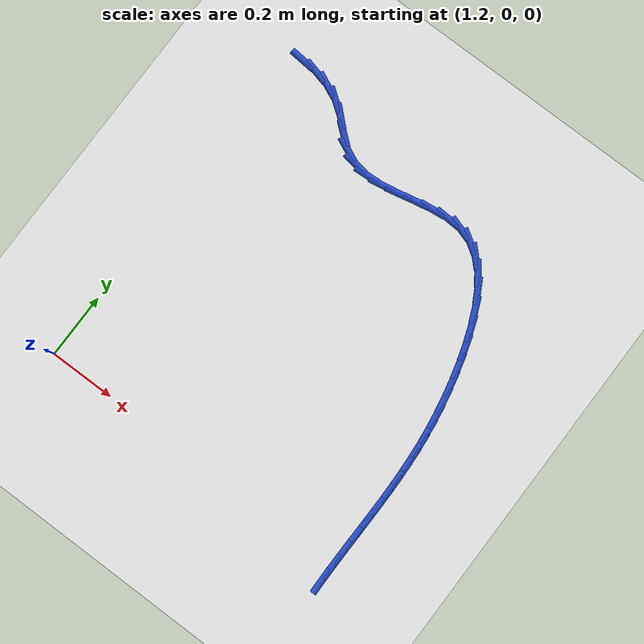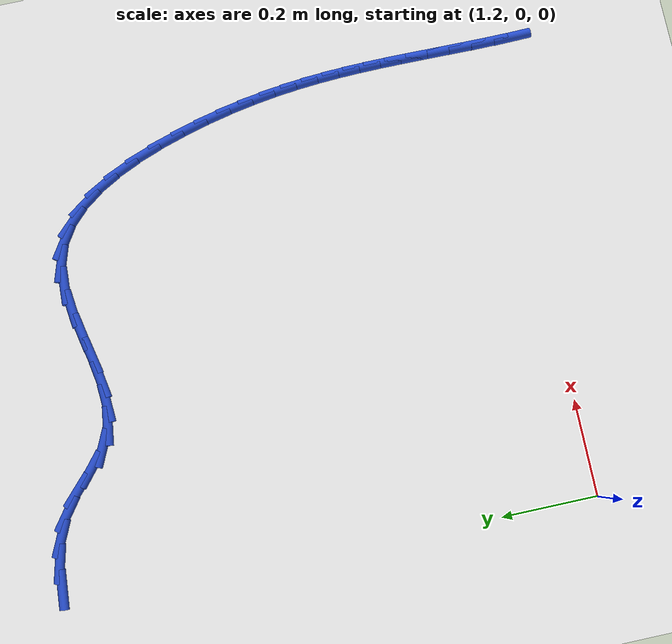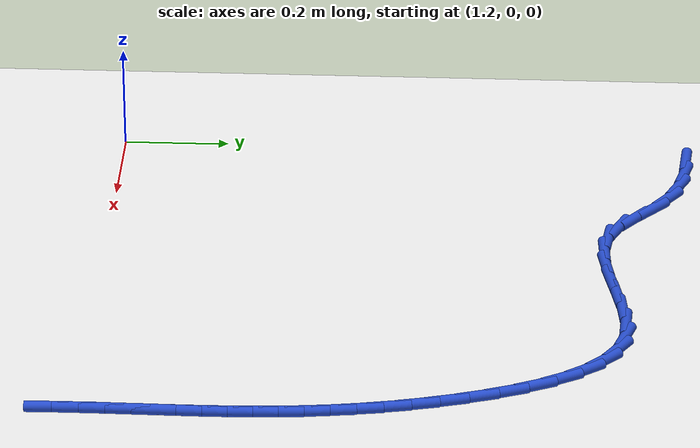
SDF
<sdf version="1.6">
 <world name="default">
  <model name="ground_plane">
   <static>1</static>
   <link name="link">
    <collision name="collision">
     <geometry><plane><normal>0 0 1</normal><size>100 100</size></plane></geometry>
     <surface><friction><ode><mu>100</mu><mu2>50</mu2></ode></friction></surface>
    </collision>
    <visual name="visual">
     <cast_shadows>0</cast_shadows>
     <geometry><plane><normal>0 0 1</normal><size>100 100</size></plane></geometry>
     <material>
      <script><uri>file://media/materials/scripts/gazebo.material</uri><name>Gazebo/WhiteGlow</name></script>
     </material>
    </visual>
   </link>
  </model>
  <model name="line">
   <link name="link_36">
    <pose>1.2482865682533189 1.091222248486101 0.01 0 1.57 -0.08340748425018744</pose>
    <collision name="collision">
     <geometry><cylinder><radius>0.01</radius><length>0.08</length></cylinder></geometry>
    </collision>
    <visual name="visual">
     <material>
      <script><name>Gazebo/Blue</name><uri>file://media/materials/scripts/gazebo.material</uri></script>
     </material>
     <geometry><cylinder><radius>0.01</radius><length>0.08</length></cylinder></geometry>
    </visual>
   </link>
   <link name="link_37">
    <pose>1.2992010212233052 1.0869657268691848 0.01 0 1.57 -0.24237849514918086</pose>
    <collision name="collision">
     <geometry><cylinder><radius>0.01</radius><length>0.08</length></cylinder></geometry>
    </collision>
    <visual name="visual">
     <material>
      <script><name>Gazebo/Blue</name><uri>file://media/materials/scripts/gazebo.material</uri></script>
     </material>
     <geometry><cylinder><radius>0.01</radius><length>0.08</length></cylinder></geometry>
    </visual>
   </link>
   <link name="link_38">
    <pose>1.347719058260009 1.0749701705734702 0.01 0 1.57 -0.42653907451353473</pose>
    <collision name="collision">
     <geometry><cylinder><radius>0.01</radius><length>0.08</length></cylinder></geometry>
    </collision>
    <visual name="visual">
     <material>
      <script><name>Gazebo/Blue</name><uri>file://media/materials/scripts/gazebo.material</uri></script>
     </material>
     <geometry><cylinder><radius>0.01</radius><length>0.08</length></cylinder></geometry>
    </visual>
   </link>
   <link name="link_39">
    <pose>1.3926507030747077 1.0545514890839418 0.01 0 1.57 -0.6294814415179085</pose>
    <collision name="collision">
     <geometry><cylinder><radius>0.01</radius><length>0.08</length></cylinder></geometry>
    </collision>
    <visual name="visual">
     <material>
      <script><name>Gazebo/Blue</name><uri>file://media/materials/scripts/gazebo.material</uri></script>
     </material>
     <geometry><cylinder><radius>0.01</radius><length>0.08</length></cylinder></geometry>
    </visual>
   </link>
   <link name="link_40">
    <pose>1.4329145899051385 1.0252264627812258 0.01 0 1.57 -0.7468671732004298</pose>
    <collision name="collision">
     <geometry><cylinder><radius>0.01</radius><length>0.08</length></cylinder></geometry>
    </collision>
    <visual name="visual">
     <material>
      <script><name>Gazebo/Blue</name><uri>file://media/materials/scripts/gazebo.material</uri></script>
     </material>
     <geometry><cylinder><radius>0.01</radius><length>0.08</length></cylinder></geometry>
    </visual>
   </link>
   <link name="link_41">
    <pose>1.4698659660813262 0.9910182920969072 0.01 0 1.57 -0.6861508142728906</pose>
    <collision name="collision">
     <geometry><cylinder><radius>0.01</radius><length>0.08</length></cylinder></geometry>
    </collision>
    <visual name="visual">
     <material>
      <script><name>Gazebo/Blue</name><uri>file://media/materials/scripts/gazebo.material</uri></script>
     </material>
     <geometry><cylinder><radius>0.01</radius><length>0.08</length></cylinder></geometry>
    </visual>
   </link>
   <link name="link_42">
    <pose>1.5072630456528717 0.9603943698709438 0.01 0 1.57 -0.4293373047036167</pose>
    <collision name="collision">
     <geometry><cylinder><radius>0.01</radius><length>0.08</length></cylinder></geometry>
    </collision>
    <visual name="visual">
     <material>
      <script><name>Gazebo/Blue</name><uri>file://media/materials/scripts/gazebo.material</uri></script>
     </material>
     <geometry><cylinder><radius>0.01</radius><length>0.08</length></cylinder></geometry>
    </visual>
   </link>
   <link name="link_43">
    <pose>1.548712986838111 0.9414177915825171 0.01 0 1.57 -0.13399790288748445</pose>
    <collision name="collision">
     <geometry><cylinder><radius>0.01</radius><length>0.08</length></cylinder></geometry>
    </collision>
    <visual name="visual">
     <material>
      <script><name>Gazebo/Blue</name><uri>file://media/materials/scripts/gazebo.material</uri></script>
     </material>
     <geometry><cylinder><radius>0.01</radius><length>0.08</length></cylinder></geometry>
    </visual>
   </link>
   <link name="link_44">
    <pose>1.5948553656058173 0.9351975358138063 0.01 0 1.57 0.06304998692201866</pose>
    <collision name="collision">
     <geometry><cylinder><radius>0.01</radius><length>0.08</length></cylinder></geometry>
    </collision>
    <visual name="visual">
     <material>
      <script><name>Gazebo/Blue</name><uri>file://media/materials/scripts/gazebo.material</uri></script>
     </material>
     <geometry><cylinder><radius>0.01</radius><length>0.08</length></cylinder></geometry>
    </visual>
   </link>
   <link name="link_45">
    <pose>1.644402196647742 0.938325608972584 0.01 0 1.57 0.17242606579460498</pose>
    <collision name="collision">
     <geometry><cylinder><radius>0.01</radius><length>0.08</length></cylinder></geometry>
    </collision>
    <visual name="visual">
     <material>
      <script><name>Gazebo/Blue</name><uri>file://media/materials/scripts/gazebo.material</uri></script>
     </material>
     <geometry><cylinder><radius>0.01</radius><length>0.08</length></cylinder></geometry>
    </visual>
   </link>
   <link name="link_46">
    <pose>1.696032779856192 0.9473173548771904 0.01 0 1.57 0.2137114982523742</pose>
    <collision name="collision">
     <geometry><cylinder><radius>0.01</radius><length>0.08</length></cylinder></geometry>
    </collision>
    <visual name="visual">
     <material>
      <script><name>Gazebo/Blue</name><uri>file://media/materials/scripts/gazebo.material</uri></script>
     </material>
     <geometry><cylinder><radius>0.01</radius><length>0.08</length></cylinder></geometry>
    </visual>
   </link>
   <link name="link_47">
    <pose>1.7484264151234732 0.9586881173459646 0.01 0 1.57 0.19550139874099487</pose>
    <collision name="collision">
     <geometry><cylinder><radius>0.01</radius><length>0.08</length></cylinder></geometry>
    </collision>
    <visual name="visual">
     <material>
      <script><name>Gazebo/Blue</name><uri>file://media/materials/scripts/gazebo.material</uri></script>
     </material>
     <geometry><cylinder><radius>0.01</radius><length>0.08</length></cylinder></geometry>
    </visual>
   </link>
   <link name="link_48">
    <pose>1.8002624023418914 0.9689532401972458 0.01 0 1.57 0.11310795236327678</pose>
    <collision name="collision">
     <geometry><cylinder><radius>0.01</radius><length>0.08</length></cylinder></geometry>
    </collision>
    <visual name="visual">
     <material>
      <script><name>Gazebo/Blue</name><uri>file://media/materials/scripts/gazebo.material</uri></script>
     </material>
     <geometry><cylinder><radius>0.01</radius><length>0.08</length></cylinder></geometry>
    </visual>
   </link>
   <link name="link_49">
    <pose>1.850220041403754 0.9746280672493743 0.01 0 1.57 -0.0512851280952237</pose>
    <collision name="collision">
     <geometry><cylinder><radius>0.01</radius><length>0.08</length></cylinder></geometry>
    </collision>
    <visual name="visual">
     <material>
      <script><name>Gazebo/Blue</name><uri>file://media/materials/scripts/gazebo.material</uri></script>
     </material>
     <geometry><cylinder><radius>0.01</radius><length>0.08</length></cylinder></geometry>
    </visual>
   </link>
   <link name="link_50">
    <pose>1.8969786322013666 0.9722279423206889 0.01 0 1.57 -0.30920133902874697</pose>
    <collision name="collision">
     <geometry><cylinder><radius>0.01</radius><length>0.08</length></cylinder></geometry>
    </collision>
    <visual name="visual">
     <material>
      <script><name>Gazebo/Blue</name><uri>file://media/materials/scripts/gazebo.material</uri></script>
     </material>
     <geometry><cylinder><radius>0.01</radius><length>0.08</length></cylinder></geometry>
    </visual>
   </link>
   <link name="link_51">
    <pose>1.9393470703888034 0.9586934668144883 0.01 0 1.57 -0.5742188186803635</pose>
    <collision name="collision">
     <geometry><cylinder><radius>0.01</radius><length>0.08</length></cylinder></geometry>
    </collision>
    <visual name="visual">
     <material>
      <script><name>Gazebo/Blue</name><uri>file://media/materials/scripts/gazebo.material</uri></script>
     </material>
     <geometry><cylinder><radius>0.01</radius><length>0.08</length></cylinder></geometry>
    </visual>
   </link>
   <link name="link_52">
    <pose>1.9771344782977258 0.9342474017935839 0.01 0 1.57 -0.787284432630587</pose>
    <collision name="collision">
     <geometry><cylinder><radius>0.01</radius><length>0.08</length></cylinder></geometry>
    </collision>
    <visual name="visual">
     <material>
      <script><name>Gazebo/Blue</name><uri>file://media/materials/scripts/gazebo.material</uri></script>
     </material>
     <geometry><cylinder><radius>0.01</radius><length>0.08</length></cylinder></geometry>
    </visual>
   </link>
   <link name="link_53">
    <pose>2.0106154426083465 0.9006398904052688 0.01 0 1.57 -0.9479905221870754</pose>
    <collision name="collision">
     <geometry><cylinder><radius>0.01</radius><length>0.08</length></cylinder></geometry>
    </collision>
    <visual name="visual">
     <material>
      <script><name>Gazebo/Blue</name><uri>file://media/materials/scripts/gazebo.material</uri></script>
     </material>
     <geometry><cylinder><radius>0.01</radius><length>0.08</length></cylinder></geometry>
    </visual>
   </link>
   <link name="link_54">
    <pose>2.0400671394477903 0.8596295728489362 0.01 0 1.57 -1.067301034450368</pose>
    <collision name="collision">
     <geometry><cylinder><radius>0.01</radius><length>0.08</length></cylinder></geometry>
    </collision>
    <visual name="visual">
     <material>
      <script><name>Gazebo/Blue</name><uri>file://media/materials/scripts/gazebo.material</uri></script>
     </material>
     <geometry><cylinder><radius>0.01</radius><length>0.08</length></cylinder></geometry>
    </visual>
   </link>
   <link name="link_55">
    <pose>2.0657667449431827 0.8129750893239805 0.01 0 1.57 -1.1565035445850742</pose>
    <collision name="collision">
     <geometry><cylinder><radius>0.01</radius><length>0.08</length></cylinder></geometry>
    </collision>
    <visual name="visual">
     <material>
      <script><name>Gazebo/Blue</name><uri>file://media/materials/scripts/gazebo.material</uri></script>
     </material>
     <geometry><cylinder><radius>0.01</radius><length>0.08</length></cylinder></geometry>
    </visual>
   </link>
   <link name="link_56">
    <pose>2.0879914352216478 0.762435080029795 0.01 0 1.57 -1.2241172107202294</pose>
    <collision name="collision">
     <geometry><cylinder><radius>0.01</radius><length>0.08</length></cylinder></geometry>
    </collision>
    <visual name="visual">
     <material>
      <script><name>Gazebo/Blue</name><uri>file://media/materials/scripts/gazebo.material</uri></script>
     </material>
     <geometry><cylinder><radius>0.01</radius><length>0.08</length></cylinder></geometry>
    </visual>
   </link>
   <link name="link_57">
    <pose>2.10701838641031 0.7097681851657731 0.01 0 1.57 -1.275955129877135</pose>
    <collision name="collision">
     <geometry><cylinder><radius>0.01</radius><length>0.08</length></cylinder></geometry>
    </collision>
    <visual name="visual">
     <material>
      <script><name>Gazebo/Blue</name><uri>file://media/materials/scripts/gazebo.material</uri></script>
     </material>
     <geometry><cylinder><radius>0.01</radius><length>0.08</length></cylinder></geometry>
    </visual>
   </link>
   <link name="link_58">
    <pose>2.1231247746362953 0.6567330449313074 0.01 0 1.57 -1.3165396528618019</pose>
    <collision name="collision">
     <geometry><cylinder><radius>0.01</radius><length>0.08</length></cylinder></geometry>
    </collision>
    <visual name="visual">
     <material>
      <script><name>Gazebo/Blue</name><uri>file://media/materials/scripts/gazebo.material</uri></script>
     </material>
     <geometry><cylinder><radius>0.01</radius><length>0.08</length></cylinder></geometry>
    </visual>
   </link>
   <link name="link_59">
    <pose>2.1365840468953263 0.6049429269997217 0.01 0 1.57 -1.353860161787056</pose>
    <collision name="collision">
     <geometry><cylinder><radius>0.01</radius><length>0.08</length></cylinder></geometry>
    </collision>
    <visual name="visual">
     <material>
      <script><name>Gazebo/Blue</name><uri>file://media/materials/scripts/gazebo.material</uri></script>
     </material>
     <geometry><cylinder><radius>0.01</radius><length>0.08</length></cylinder></geometry>
    </visual>
   </link>
   <link name="link_60">
    <pose>2.14763829028107 0.5547885976920731 0.01 0 1.57 -1.3906673325039391</pose>
    <collision name="collision">
     <geometry><cylinder><radius>0.01</radius><length>0.08</length></cylinder></geometry>
    </collision>
    <visual name="visual">
     <material>
      <script><name>Gazebo/Blue</name><uri>file://media/materials/scripts/gazebo.material</uri></script>
     </material>
     <geometry><cylinder><radius>0.01</radius><length>0.08</length></cylinder></geometry>
    </visual>
   </link>
   <link name="link_61">
    <pose>2.1565138984983276 0.50604904880699 0.01 0 1.57 -1.4262139118599615</pose>
    <collision name="collision">
     <geometry><cylinder><radius>0.01</radius><length>0.08</length></cylinder></geometry>
    </collision>
    <visual name="visual">
     <material>
      <script><name>Gazebo/Blue</name><uri>file://media/materials/scripts/gazebo.material</uri></script>
     </material>
     <geometry><cylinder><radius>0.01</radius><length>0.08</length></cylinder></geometry>
    </visual>
   </link>
   <link name="link_62">
    <pose>2.163437148498952 0.4584987207691362 0.01 0 1.57 -1.4596965568626592</pose>
    <collision name="collision">
     <geometry><cylinder><radius>0.01</radius><length>0.08</length></cylinder></geometry>
    </collision>
    <visual name="visual">
     <material>
      <script><name>Gazebo/Blue</name><uri>file://media/materials/scripts/gazebo.material</uri></script>
     </material>
     <geometry><cylinder><radius>0.01</radius><length>0.08</length></cylinder></geometry>
    </visual>
   </link>
   <link name="link_63">
    <pose>2.168634317234795 0.411912054003177 0.01 0 1.57 -1.4903274934090043</pose>
    <collision name="collision">
     <geometry><cylinder><radius>0.01</radius><length>0.08</length></cylinder></geometry>
    </collision>
    <visual name="visual">
     <material>
      <script><name>Gazebo/Blue</name><uri>file://media/materials/scripts/gazebo.material</uri></script>
     </material>
     <geometry><cylinder><radius>0.01</radius><length>0.08</length></cylinder></geometry>
    </visual>
   </link>
   <link name="link_64">
    <pose>2.172331681657705 0.3660634889337756 0.01 0 1.57 -1.5173833575709175</pose>
    <collision name="collision">
     <geometry><cylinder><radius>0.01</radius><length>0.08</length></cylinder></geometry>
    </collision>
    <visual name="visual">
     <material>
      <script><name>Gazebo/Blue</name><uri>file://media/materials/scripts/gazebo.material</uri></script>
     </material>
     <geometry><cylinder><radius>0.01</radius><length>0.08</length></cylinder></geometry>
    </visual>
   </link>
   <link name="link_65">
    <pose>2.1747555187195364 0.32072746598559654 0.01 0 1.57 -1.5402483192840377</pose>
    <collision name="collision">
     <geometry><cylinder><radius>0.01</radius><length>0.08</length></cylinder></geometry>
    </collision>
    <visual name="visual">
     <material>
      <script><name>Gazebo/Blue</name><uri>file://media/materials/scripts/gazebo.material</uri></script>
     </material>
     <geometry><cylinder><radius>0.01</radius><length>0.08</length></cylinder></geometry>
    </visual>
   </link>
   <link name="link_66">
    <pose>2.1761321053721385 0.27567842558330374 0.01 0 1.57 -1.5584465963568337</pose>
    <collision name="collision">
     <geometry><cylinder><radius>0.01</radius><length>0.08</length></cylinder></geometry>
    </collision>
    <visual name="visual">
     <material>
      <script><name>Gazebo/Blue</name><uri>file://media/materials/scripts/gazebo.material</uri></script>
     </material>
     <geometry><cylinder><radius>0.01</radius><length>0.08</length></cylinder></geometry>
    </visual>
   </link>
   <link name="link_67">
    <pose>2.176687718567363 0.23069080815156098 0.01 0 1.57 1.5699307280739707</pose>
    <collision name="collision">
     <geometry><cylinder><radius>0.01</radius><length>0.08</length></cylinder></geometry>
    </collision>
    <visual name="visual">
     <material>
      <script><name>Gazebo/Blue</name><uri>file://media/materials/scripts/gazebo.material</uri></script>
     </material>
     <geometry><cylinder><radius>0.01</radius><length>0.08</length></cylinder></geometry>
    </visual>
   </link>
   <link name="link_68">
    <pose>2.1766486352570604 0.18553905411503308 0.01 0 1.57 1.5618486102231517</pose>
    <collision name="collision">
     <geometry><cylinder><radius>0.01</radius><length>0.08</length></cylinder></geometry>
    </collision>
    <visual name="visual">
     <material>
      <script><name>Gazebo/Blue</name><uri>file://media/materials/scripts/gazebo.material</uri></script>
     </material>
     <geometry><cylinder><radius>0.01</radius><length>0.08</length></cylinder></geometry>
    </visual>
   </link>
   <link name="link_69">
    <pose>2.176241132393083 0.13999760389838392 0.01 0 1.57 1.5588886424105113</pose>
    <collision name="collision">
     <geometry><cylinder><radius>0.01</radius><length>0.08</length></cylinder></geometry>
    </collision>
    <visual name="visual">
     <material>
      <script><name>Gazebo/Blue</name><uri>file://media/materials/scripts/gazebo.material</uri></script>
     </material>
     <geometry><cylinder><radius>0.01</radius><length>0.08</length></cylinder></geometry>
    </visual>
   </link>
   <link name="link_70">
    <pose>2.1756914869272816 0.09384089792627757 0.01 0 1.57 1.5608916365025571</pose>
    <collision name="collision">
     <geometry><cylinder><radius>0.01</radius><length>0.08</length></cylinder></geometry>
    </collision>
    <visual name="visual">
     <material>
      <script><name>Gazebo/Blue</name><uri>file://media/materials/scripts/gazebo.material</uri></script>
     </material>
     <geometry><cylinder><radius>0.01</radius><length>0.08</length></cylinder></geometry>
    </visual>
   </link>
   <link name="link_71">
    <pose>2.1752259758115073 0.046843376623377786 0.01 0 1.57 1.5675693874959442</pose>
    <collision name="collision">
     <geometry><cylinder><radius>0.01</radius><length>0.08</length></cylinder></geometry>
    </collision>
    <visual name="visual">
     <material>
      <script><name>Gazebo/Blue</name><uri>file://media/materials/scripts/gazebo.material</uri></script>
     </material>
     <geometry><cylinder><radius>0.01</radius><length>0.08</length></cylinder></geometry>
    </visual>
   </link>
   <link name="link_72">
    <pose>2.1750708759976107 -0.001220519585650573 0.01 0 1.57 -1.5630651057471567</pose>
    <collision name="collision">
     <geometry><cylinder><radius>0.01</radius><length>0.08</length></cylinder></geometry>
    </collision>
    <visual name="visual">
     <material>
      <script><name>Gazebo/Blue</name><uri>file://media/materials/scripts/gazebo.material</uri></script>
     </material>
     <geometry><cylinder><radius>0.01</radius><length>0.08</length></cylinder></geometry>
    </visual>
   </link>
   <link name="link_73">
    <pose>2.175452464437444 -0.05057635027614375 0.01 0 1.57 -1.5483020117732704</pose>
    <collision name="collision">
     <geometry><cylinder><radius>0.01</radius><length>0.08</length></cylinder></geometry>
    </collision>
    <visual name="visual">
     <material>
      <script><name>Gazebo/Blue</name><uri>file://media/materials/scripts/gazebo.material</uri></script>
     </material>
     <geometry><cylinder><radius>0.01</radius><length>0.08</length></cylinder></geometry>
    </visual>
   </link>
  </model>
 </world>
</sdf>
